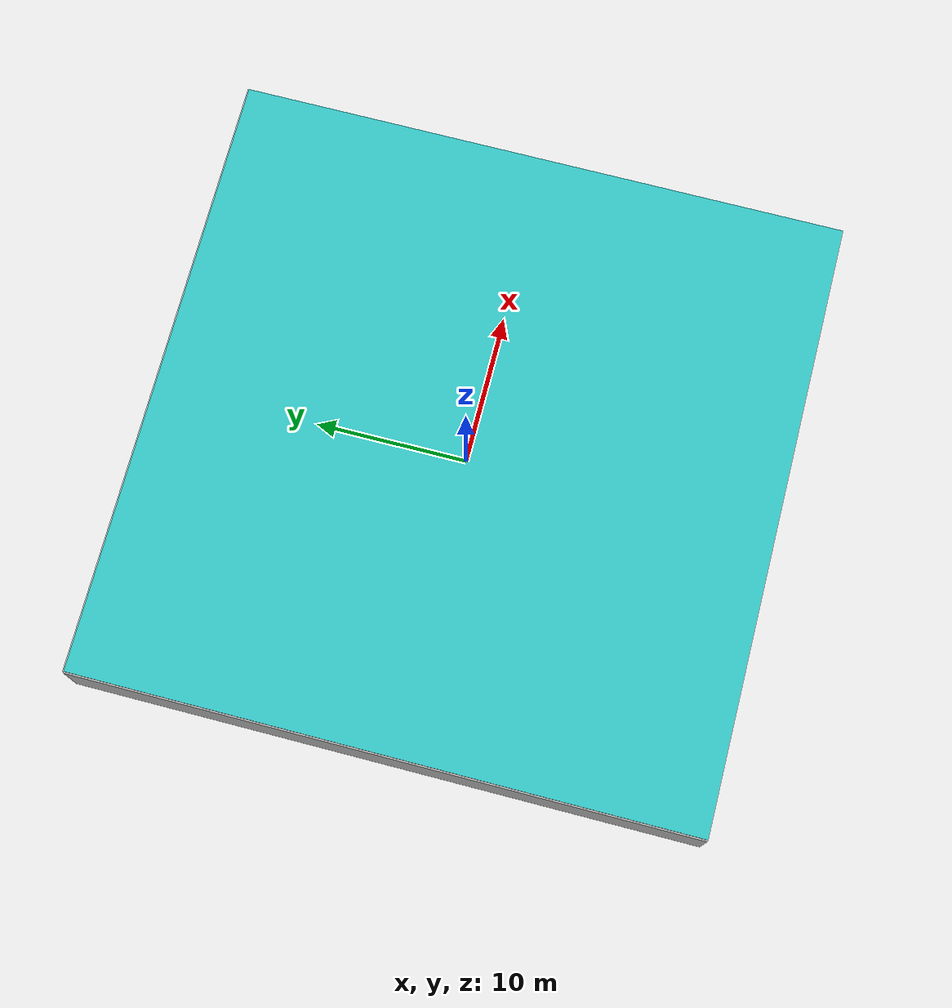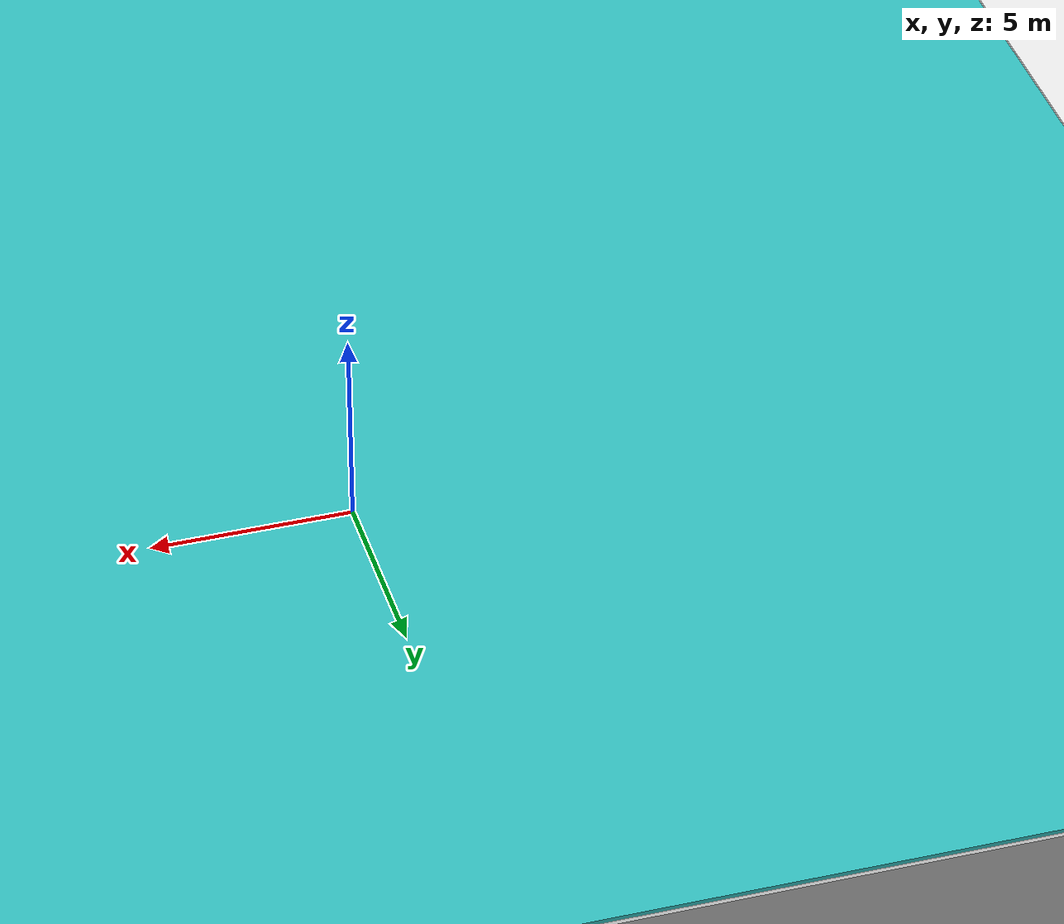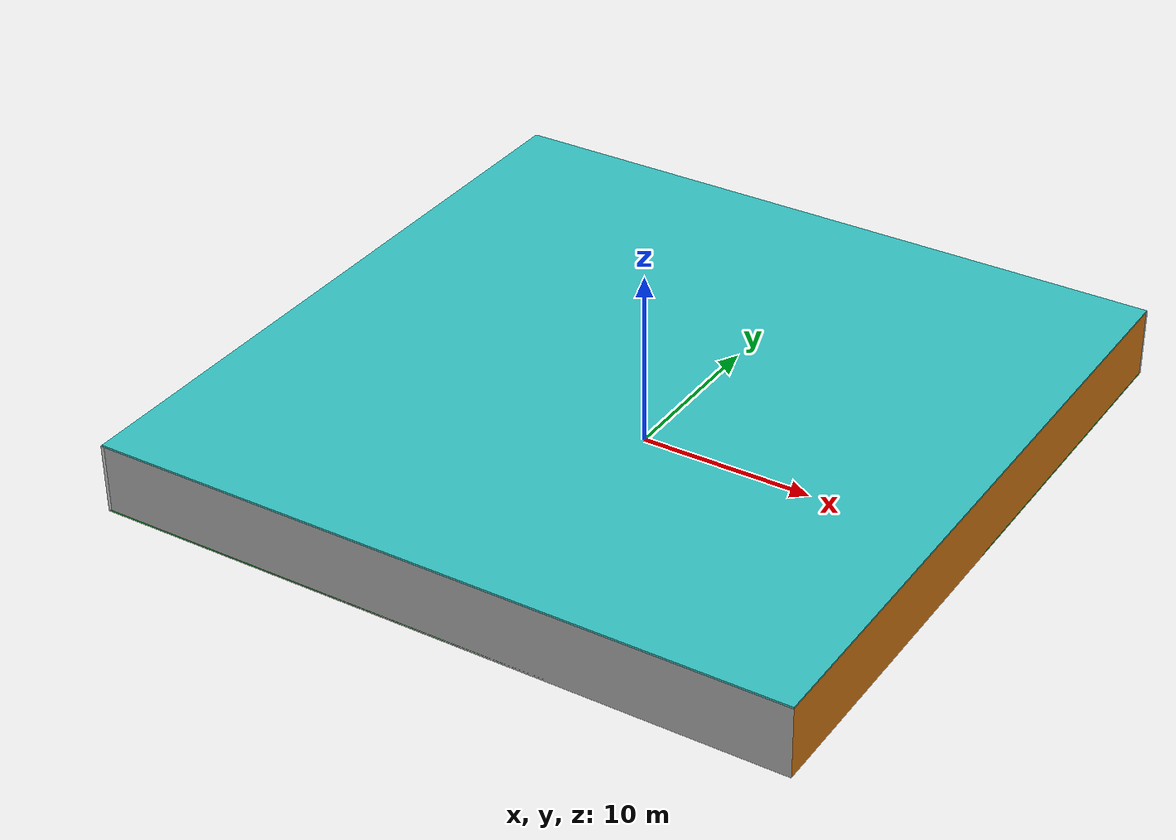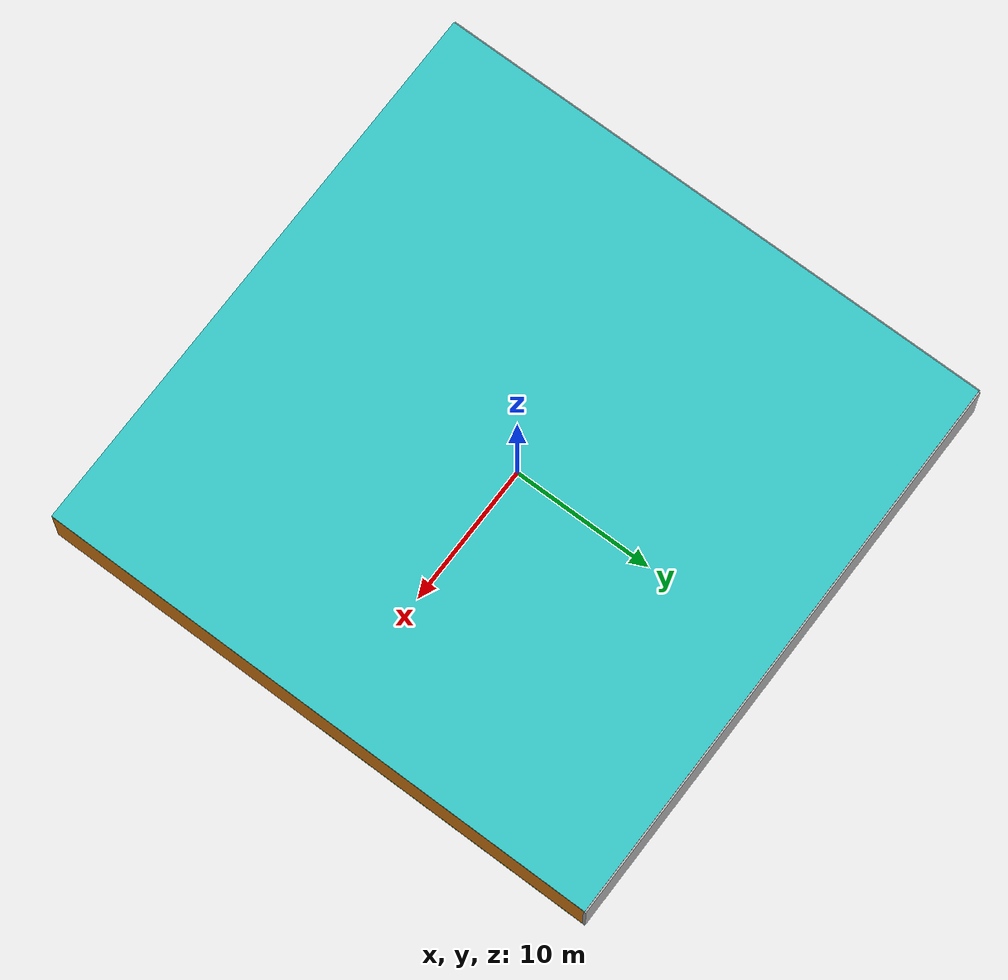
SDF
<sdf version="1.4">
 <world name="default">
  <physics type="ode">
   <max_step_size>0.001</max_step_size>
   <real_time_factor>1</real_time_factor>
   <real_time_update_rate>1000</real_time_update_rate>
   <gravity>0 0 -9.8</gravity>
  </physics>
  <scene><ambient>0.4 0.4 0.4 1</ambient><background>0.7 0.7 0.7 1</background><shadows>1</shadows></scene>
  <model name="Surrounding">
   <static>1</static>
   <link name="Ceiling">
    <collision name="Ceiling_Collision"><geometry><box><size>40 40 0.1</size></box></geometry></collision>
    <visual name="Ceiling_Visual">
     <geometry><box><size>40 40 0.1</size></box></geometry>
     <material>
      <script><uri>file://media/materials/scripts/gazebo.material</uri><name>Gazebo/Turquoise</name></script>
     </material>
    </visual>
    <pose>0 0 4.05 0 0 0</pose>
   </link>
   <link name="Wall_South">
    <collision name="Wall_South_Collision">
     <geometry><box><size>40 0 4</size></box></geometry>
     <pose>0 0 2 0 -0 0</pose>
    </collision>
    <visual name="Wall_South_Visual">
     <pose>0 0 2 0 -0 0</pose>
     <geometry><box><size>40 0 4</size></box></geometry>
     <material>
      <script><uri>file://media/materials/scripts/gazebo.material</uri><name>Gazebo/GreyGradientSky</name></script>
     </material>
    </visual>
    <velocity_decay><linear>0</linear><angular>0</angular></velocity_decay>
    <pose>0 -20 0 0 -0 0</pose>
   </link>
   <link name="Wall_East">
    <collision name="Wall_21_Collision">
     <geometry><box><size>40 0 4</size></box></geometry>
     <pose>0 0 2 0 -0 0</pose>
    </collision>
    <visual name="Wall_21_Visual">
     <pose>0 0 2 0 -0 0</pose>
     <geometry><box><size>40 0 4</size></box></geometry>
     <material>
      <script><uri>file://media/materials/scripts/gazebo.material</uri><name>Gazebo/Orange</name></script>
     </material>
    </visual>
    <velocity_decay><linear>0</linear><angular>0</angular></velocity_decay>
    <pose>20 0 0 0 -0 1.5708</pose>
   </link>
   <link name="Wall_North">
    <collision name="Wall_22_Collision">
     <geometry><box><size>40 0.2 4</size></box></geometry>
     <pose>0 0 2 0 -0 0</pose>
    </collision>
    <visual name="Wall_22_Visual">
     <pose>0 0 2 0 -0 0</pose>
     <geometry><box><size>40 0.2 4</size></box></geometry>
     <material>
      <script><uri>file://media/materials/scripts/gazebo.material</uri><name>Gazebo/LightOff</name></script>
     </material>
    </visual>
    <velocity_decay><linear>0</linear><angular>0</angular></velocity_decay>
    <pose>0 20 0 0 -0 0</pose>
   </link>
   <link name="Wall_West">
    <collision name="Wall_23_Collision">
     <geometry><box><size>40 0.2 4</size></box></geometry>
     <pose>0 0 2 0 -0 0</pose>
    </collision>
    <visual name="Wall_23_Visual">
     <pose>0 0 2 0 -0 0</pose>
     <geometry><box><size>40 0.2 4</size></box></geometry>
     <material>
      <script><uri>file://media/materials/scripts/gazebo.material</uri><name>Gazebo/JointAnchor</name></script>
     </material>
    </visual>
    <velocity_decay><linear>0</linear><angular>0</angular></velocity_decay>
    <pose>-20 0 0 0 0 -1.5708</pose>
   </link>
   <link name="Ground_link">
    <collision name="collision">
     <pose>0 0 .05 0 -0 0</pose>
     <geometry><box><size>40 40 0.1</size></box></geometry>
    </collision>
    <visual name="visual">
     <pose>0 0 .05 0 -0 0</pose>
     <geometry><box><size>40 40 0.1</size></box></geometry>
     <material>
      <script><uri>file://media/materials/scripts/gazebo.material</uri><name>Gazebo/GreenGlow</name></script>
     </material>
    </visual>
   </link>
   <static>1</static>
  </model>
  <spherical_coordinates>
   <surface_model>EARTH_WGS84</surface_model>
   <latitude_deg>0</latitude_deg>
   <longitude_deg>0</longitude_deg>
   <elevation>0</elevation>
   <heading_deg>0</heading_deg>
  </spherical_coordinates>
  <light name="lightball_0" type="diffuse">
   <diffuse>0.8 0.8 0.8 1</diffuse>
   <specular>0.2 0.2 0.2 1</specular>
   <attenuation>
    <range>100</range>
    <constant>0.7</constant>
    <linear>0.01</linear>
    <quadratic>0.001</quadratic>
   </attenuation>
   <direction>-0.5 0.1 -0.9</direction>
   <pose>-9.76595247017 -17.9430303979 0.75910684598 0 0 0</pose>
  </light>
  <light name="lightball_1" type="diffuse">
   <diffuse>0.8 0.8 0.8 1</diffuse>
   <specular>0.2 0.2 0.2 1</specular>
   <attenuation>
    <range>100</range>
    <constant>0.7</constant>
    <linear>0.01</linear>
    <quadratic>0.001</quadratic>
   </attenuation>
   <direction>-0.5 0.1 -0.9</direction>
   <pose>17.3321742059 -11.3096246313 3.14829417285 0 0 0</pose>
  </light>
  <light name="lightball_2" type="diffuse">
   <diffuse>0.8 0.8 0.8 1</diffuse>
   <specular>0.2 0.2 0.2 1</specular>
   <attenuation>
    <range>100</range>
    <constant>0.7</constant>
    <linear>0.01</linear>
    <quadratic>0.001</quadratic>
   </attenuation>
   <direction>-0.5 0.1 -0.9</direction>
   <pose>-18.0640309547 11.1752724272 3.79567192146 0 0 0</pose>
  </light>
  <light name="lightball_3" type="diffuse">
   <diffuse>0.8 0.8 0.8 1</diffuse>
   <specular>0.2 0.2 0.2 1</specular>
   <attenuation>
    <range>100</range>
    <constant>0.7</constant>
    <linear>0.01</linear>
    <quadratic>0.001</quadratic>
   </attenuation>
   <direction>-0.5 0.1 -0.9</direction>
   <pose>-9.42464554343 10.9179943537 0.639811948898 0 0 0</pose>
  </light>
  <light name="lightball_4" type="diffuse">
   <diffuse>0.8 0.8 0.8 1</diffuse>
   <specular>0.2 0.2 0.2 1</specular>
   <attenuation>
    <range>100</range>
    <constant>0.7</constant>
    <linear>0.01</linear>
    <quadratic>0.001</quadratic>
   </attenuation>
   <direction>-0.5 0.1 -0.9</direction>
   <pose>16.4486639537 -3.19900125228 0.621600961711 0 0 0</pose>
  </light>
  <light name="lightball_5" type="diffuse">
   <diffuse>0.8 0.8 0.8 1</diffuse>
   <specular>0.2 0.2 0.2 1</specular>
   <attenuation>
    <range>100</range>
    <constant>0.7</constant>
    <linear>0.01</linear>
    <quadratic>0.001</quadratic>
   </attenuation>
   <direction>-0.5 0.1 -0.9</direction>
   <pose>-16.4701356981 1.02949472748 2.34570162917 0 0 0</pose>
  </light>
  <light name="lightball_6" type="diffuse">
   <diffuse>0.8 0.8 0.8 1</diffuse>
   <specular>0.2 0.2 0.2 1</specular>
   <attenuation>
    <range>100</range>
    <constant>0.7</constant>
    <linear>0.01</linear>
    <quadratic>0.001</quadratic>
   </attenuation>
   <direction>-0.5 0.1 -0.9</direction>
   <pose>4.08816330467 1.83332970712 1.74699103242 0 0 0</pose>
  </light>
  <light name="lightball_7" type="diffuse">
   <diffuse>0.8 0.8 0.8 1</diffuse>
   <specular>0.2 0.2 0.2 1</specular>
   <attenuation>
    <range>100</range>
    <constant>0.7</constant>
    <linear>0.01</linear>
    <quadratic>0.001</quadratic>
   </attenuation>
   <direction>-0.5 0.1 -0.9</direction>
   <pose>10.2610398315 10.2330417697 1.23341735172 0 0 0</pose>
  </light>
  <light name="lightball_8" type="diffuse">
   <diffuse>0.8 0.8 0.8 1</diffuse>
   <specular>0.2 0.2 0.2 1</specular>
   <attenuation>
    <range>100</range>
    <constant>0.7</constant>
    <linear>0.01</linear>
    <quadratic>0.001</quadratic>
   </attenuation>
   <direction>-0.5 0.1 -0.9</direction>
   <pose>18.3532058605 -13.802719114 2.66974344075 0 0 0</pose>
  </light>
  <include><uri>model://table</uri><pose>-16.935231903 -8.0143805189 0 0 0 0.347271862757</pose></include>
  <include><uri>model://table</uri><pose>-18.6713278678 -2.22020087625 0 0 0 1.59907201449</pose></include>
  <include><uri>model://table</uri><pose>-15.6620355264 -10.3194503337 0 0 0 1.60711416503</pose></include>
  <include><uri>model://cabinet</uri><pose>-14.2470738069 6.35601423376 0 0 0 2.96868276015</pose></include>
  <include><uri>model://table</uri><pose>-12.6909683449 -13.9784713628 0 0 0 0.306497488355</pose></include>
  <include><uri>model://cabinet</uri><pose>-11.6192326645 -12.5990312236 0 0 0 2.78115383828</pose></include>
  <include><uri>model://cabinet</uri><pose>-12.143529855 0.83236016301 0 0 0 2.636607712</pose></include>
  <include><uri>model://table</uri><pose>-8.969378119 -6.65688936637 0 0 0 2.29597491023</pose></include>
  <include>
   <uri>model://robocup_3Dsim_goal</uri>
   <pose>-9.67867035535 -1.6539929471 0 0 0 2.04354024198</pose>
  </include>
  <include>
   <uri>model://robocup_3Dsim_goal</uri>
   <pose>-8.00794694879 0.17350071037 0 0 0 0.0702025385979</pose>
  </include>
  <include>
   <uri>model://textured_shapes</uri>
   <pose>-9.63049904854 8.46022078922 0 0 0 0.886604697415</pose>
  </include>
  <include>
   <uri>model://textured_shapes</uri>
   <pose>-5.54963040746 -14.0304533046 0 0 0 1.92519564954</pose>
  </include>
  <include>
   <uri>model://robocup_3Dsim_goal</uri>
   <pose>-4.75034734475 0.21311898862 0 0 0 2.67641661146</pose>
  </include>
  <include><uri>model://cabinet</uri><pose>-5.19745842732 17.5246689752 0 0 0 0.116177786834</pose></include>
  <include><uri>model://cabinet</uri><pose>-3.11767001416 -5.76560878696 0 0 0 0.541928357312</pose></include>
  <include>
   <uri>model://construction_cone</uri>
   <pose>-1.7001360443 -1.79837968027 0 0 0 1.6943512198</pose>
  </include>
  <include>
   <uri>model://robocup_3Dsim_goal</uri>
   <pose>-0.169981314133 -15.6274712788 0 0 0 1.4043492952</pose>
  </include>
  <include><uri>model://cabinet</uri><pose>1.44902133208 -6.66279574798 0 0 0 2.74736757237</pose></include>
  <include>
   <uri>model://robocup_3Dsim_goal</uri>
   <pose>0.962126698471 -2.67937489402 0 0 0 2.8254854252</pose>
  </include>
  <include>
   <uri>model://construction_cone</uri>
   <pose>-0.171771787534 2.30806821525 0 0 0 0.930796620878</pose>
  </include>
  <include>
   <uri>model://robocup_3Dsim_goal</uri>
   <pose>0.605506623982 6.99670363626 0 0 0 0.289493077702</pose>
  </include>
  <include>
   <uri>model://textured_shapes</uri>
   <pose>-0.431093301946 17.7517385589 0 0 0 0.449802231293</pose>
  </include>
  <include>
   <uri>model://construction_cone</uri>
   <pose>2.58633535768 -3.4997267841 0 0 0 2.19724026712</pose>
  </include>
  <include>
   <uri>model://construction_cone</uri>
   <pose>6.38501067727 1.15981383574 0 0 0 2.65698275883</pose>
  </include>
  <include><uri>model://cabinet</uri><pose>10.318194844 -8.25197064109 0 0 0 0.134277436837</pose></include>
  <include>
   <uri>model://textured_shapes</uri>
   <pose>8.59483756328 5.65162494552 0 0 0 0.223077950666</pose>
  </include>
  <include><uri>model://cabinet</uri><pose>8.70389118027 14.4999783911 0 0 0 3.09698284484</pose></include>
  <include>
   <uri>model://textured_shapes</uri>
   <pose>9.17079579627 18.0787689475 0 0 0 2.34001416555</pose>
  </include>
  <include><uri>model://cabinet</uri><pose>12.408327974 -10.866594442 0 0 0 2.35457332765</pose></include>
  <include>
   <uri>model://construction_cone</uri>
   <pose>12.7331588887 -7.34313346363 0 0 0 1.0976249821</pose>
  </include>
  <include>
   <uri>model://construction_cone</uri>
   <pose>15.6394484435 -15.0634789326 0 0 0 2.12225366821</pose>
  </include>
  <include>
   <uri>model://robocup_3Dsim_goal</uri>
   <pose>15.9635197781 0.0799309810431 0 0 0 1.67287241993</pose>
  </include>
  <include>
   <uri>model://textured_shapes</uri>
   <pose>15.8598865976 5.84659302788 0 0 0 2.60731259789</pose>
  </include>
  <include><uri>model://cabinet</uri><pose>15.3771328367 14.7815348298 0 0 0 2.96614836575</pose></include>
  <include>
   <uri>model://textured_shapes</uri>
   <pose>15.2932070042 17.9418454248 0 0 0 0.481919679463</pose>
  </include>
 </world>
</sdf>

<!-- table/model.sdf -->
<sdf version="1.5">
  <model name="table">
    <static>true</static>
    <link name="link">
      <collision name="surface">
        <pose>0 0 1.0 0 0 0</pose>
        <geometry>
          <box>
            <size>1.5 0.8 0.03</size>
          </box>
        </geometry>
        <surface>
          <friction>
            <ode>
              <mu>0.6</mu>
              <mu2>0.6</mu2>
            </ode>
          </friction>
        </surface>
      </collision>
      <visual name="visual1">
        <pose>0 0 1.0 0 0 0</pose>
        <geometry>
          <box>
            <size>1.5 0.8 0.03</size>
          </box>
        </geometry>
        <material>
          <script>
            <uri>model://media/materials/scripts/gazebo.material</uri>
            <name>Gazebo/Wood</name>
          </script>
        </material>
      </visual>
      <collision name="front_left_leg">
        <pose>0.68 0.38 0.5 0 0 0</pose>
        <geometry>
          <cylinder>
            <radius>0.02</radius>
            <length>1.0</length>
          </cylinder>
        </geometry>
      </collision>
      <visual name="front_left_leg">
        <pose>0.68 0.38 0.5 0 0 0</pose>
        <geometry>
          <cylinder>
            <radius>0.02</radius>
            <length>1.0</length>
          </cylinder>
        </geometry>
        <material>
          <script>
            <uri>model://media/materials/scripts/gazebo.material</uri>
            <name>Gazebo/Grey</name>
          </script>
        </material>
      </visual>
      <collision name="front_right_leg">
        <pose>0.68 -0.38 0.5 0 0 0</pose>
        <geometry>
          <cylinder>
            <radius>0.02</radius>
            <length>1.0</length>
          </cylinder>
        </geometry>
      </collision>
      <visual name="front_right_leg">
        <pose>0.68 -0.38 0.5 0 0 0</pose>
        <geometry>
          <cylinder>
            <radius>0.02</radius>
            <length>1.0</length>
          </cylinder>
        </geometry>
        <material>
          <script>
            <uri>model://media/materials/scripts/gazebo.material</uri>
            <name>Gazebo/Grey</name>
          </script>
        </material>
      </visual>
      <collision name="back_right_leg">
        <pose>-0.68 -0.38 0.5 0 0 0</pose>
        <geometry>
          <cylinder>
            <radius>0.02</radius>
            <length>1.0</length>
          </cylinder>
        </geometry>
      </collision>
      <visual name="back_right_leg">
        <pose>-0.68 -0.38 0.5 0 0 0</pose>
        <geometry>
          <cylinder>
            <radius>0.02</radius>
            <length>1.0</length>
          </cylinder>
        </geometry>
        <material>
          <script>
            <uri>model://media/materials/scripts/gazebo.material</uri>
            <name>Gazebo/Grey</name>
          </script>
        </material>
      </visual>
      <collision name="back_left_leg">
        <pose>-0.68 0.38 0.5 0 0 0</pose>
        <geometry>
          <cylinder>
            <radius>0.02</radius>
            <length>1.0</length>
          </cylinder>
        </geometry>
      </collision>
      <visual name="back_left_leg">
        <pose>-0.68 0.38 0.5 0 0 0</pose>
        <geometry>
          <cylinder>
            <radius>0.02</radius>
            <length>1.0</length>
          </cylinder>
        </geometry>
        <material>
          <script>
            <uri>model://media/materials/scripts/gazebo.material</uri>
            <name>Gazebo/Grey</name>
          </script>
        </material>
      </visual>
    </link>
  </model>
</sdf>

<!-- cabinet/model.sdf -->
<sdf version="1.5">
  <model name="cabinet">
    <static>true</static>
    <link name="cabinet_bottom_plate">
      <inertial>
        <pose>0 0 -1 0 0 0</pose>
        <inertia>
          <ixx>2.050000</ixx>
          <ixy>0</ixy>
          <ixz>0</ixz>
          <iyy>2.050000</iyy>
          <iyz>0</iyz>
          <izz>2.050000</izz>
        </inertia>
        <mass>25.000000</mass>
      </inertial>
      <collision name="cabinet_bottom_plate_geom">
        <pose>0 0 0.010000 0 0 0</pose>
        <geometry>
          <box>
            <size>0.450000 0.450000 0.020000</size>
          </box>
        </geometry>
      </collision>
      <visual name="cabinet_bottom_plate_geom_visual">
        <pose>0 0 0.010000 0 0 0</pose>
        <geometry>
          <box>
            <size>0.450000 0.450000 0.020000</size>
          </box>
        </geometry>
        <material>
          <script>
            <uri>model://media/materials/scripts/gazebo.material</uri>
            <name>Gazebo/Wood</name>
          </script>
        </material>
      </visual>
      <collision name="cabinet_bottom_plate_geom_cabinet_back_plate">
        <pose>0.235000 0 0.510000 0 0 0</pose>
        <geometry>
          <box>
            <size>0.020000 0.450000 1.020000</size>
          </box>
        </geometry>
      </collision>
      <visual name="cabinet_bottom_plate_geom_cabinet_back_plate_visual">
        <pose>0.235000 0 0.510000 0 0 0</pose>
        <geometry>
          <box>
            <size>0.020000 0.450000 1.020000</size>
          </box>
        </geometry>
        <material>
          <script>
            <uri>model://media/materials/scripts/gazebo.material</uri>
            <name>Gazebo/Wood</name>
          </script>
        </material>
      </visual>
      <collision name="cabinet_bottom_plate_geom_cabinet_left_plate">
        <pose>0 0.235000 0.510000 0 0 0</pose>
        <geometry>
          <box>
            <size>0.450000 0.020000 1.020000</size>
          </box>
        </geometry>
      </collision>
      <visual name="cabinet_bottom_plate_geom_cabinet_left_plate_visual">
        <pose>0 0.235000 0.510000 0 0 0</pose>
        <geometry>
          <box>
            <size>0.450000 0.020000 1.020000</size>
          </box>
        </geometry>
        <material>
          <script>
            <uri>model://media/materials/scripts/gazebo.material</uri>
            <name>Gazebo/Wood</name>
          </script>
        </material>
      </visual>
      <collision name="cabinet_bottom_plate_geom_cabinet_middle_plate">
        <pose>0 0 0.510000 0 0 0</pose>
        <geometry>
          <box>
            <size>0.450000 0.450000 0.020000</size>
          </box>
        </geometry>
      </collision>
      <visual name="cabinet_bottom_plate_geom_cabinet_middle_plate_visual">
        <pose>0 0 0.510000 0 0 0</pose>
        <geometry>
          <box>
            <size>0.450000 0.450000 0.020000</size>
          </box>
        </geometry>
        <material>
          <script>
            <uri>model://media/materials/scripts/gazebo.material</uri>
            <name>Gazebo/Wood</name>
          </script>
        </material>
      </visual>
      <collision name="cabinet_bottom_plate_geom_cabinet_right_plate">
        <pose>0 -0.235000 0.510000 0 0 0</pose>
        <geometry>
          <box>
            <size>0.450000 0.020000 1.020000</size>
          </box>
        </geometry>
      </collision>
      <visual name="cabinet_bottom_plate_geom_cabinet_right_plate_visual">
        <pose>0 -0.235000 0.510000 0 0 0</pose>
        <geometry>
          <box>
            <size>0.450000 0.020000 1.020000</size>
          </box>
        </geometry>
        <material>
          <script>
            <uri>model://media/materials/scripts/gazebo.material</uri>
            <name>Gazebo/Wood</name>
          </script>
        </material>
      </visual>
      <collision name="cabinet_bottom_plate_geom_cabinet_top_plate">
        <pose>0 0 1.010000 0 0 0</pose>
        <geometry>
          <box>
            <size>0.450000 0.450000 0.020000</size>
          </box>
        </geometry>
      </collision>
      <visual name="cabinet_bottom_plate_geom_cabinet_top_plate_visual">
        <pose>0 0 1.010000 0 0 0</pose>
        <geometry>
          <box>
            <size>0.450000 0.450000 0.020000</size>
          </box>
        </geometry>
        <material>
          <script>
            <uri>model://media/materials/scripts/gazebo.material</uri>
            <name>Gazebo/Wood</name>
          </script>
        </material>
      </visual>
    </link>
  </model>
</sdf>

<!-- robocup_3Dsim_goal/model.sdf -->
<sdf version="1.5">
  <model name="robocup_3d_goal">
    <static>true</static>
    <link name="left_post">
      <pose>0 1.05 0.45 0 0 0</pose>
      <collision name="collision">
        <geometry>
          <cylinder>
            <radius>0.05</radius>
            <length>0.9</length>
          </cylinder>
        </geometry>
      </collision>
      <visual name="visual">
        <geometry>
          <cylinder>
            <radius>0.05</radius>
            <length>0.9</length>
          </cylinder>
        </geometry>
        <material>
          <script>
            <uri>file://media/materials/scripts/gazebo.material</uri>
            <name>Gazebo/ZincYellow</name>
          </script>
        </material>
      </visual>
    </link>
    <link name="left_support_horiz_lower">
      <pose>0.30 1.05 0.01 0 0 0</pose>
      <collision name="collision">
        <geometry>
          <box>
            <size>0.50 0.02 0.02</size>
          </box>
        </geometry>
      </collision>
      <visual name="visual">
        <geometry>
          <box>
            <size>0.50 0.02 0.02</size>
          </box>
        </geometry>
        <material>
          <script>
            <uri>file://media/materials/scripts/gazebo.material</uri>
            <name>Gazebo/White</name>
          </script>
        </material>
      </visual>
    </link>
    <link name="left_support_horiz_upper">
      <pose>0.30 1.05 0.79 0 0 0</pose>
      <collision name="collision">
        <geometry>
          <box>
            <size>0.50 0.02 0.02</size>
          </box>
        </geometry>
      </collision>
      <visual name="visual">
        <geometry>
          <box>
            <size>0.50 0.02 0.02</size>
          </box>
        </geometry>
        <material>
          <script>
            <uri>file://media/materials/scripts/gazebo.material</uri>
            <name>Gazebo/White</name>
          </script>
        </material>
      </visual>
    </link>
    <link name="left_support_vertical">
      <pose>0.56 1.05 0.4 0 1.5708 0</pose>
      <collision name="collision">
        <geometry>
          <box>
            <size>0.80 0.02 0.02</size>
          </box>
        </geometry>
      </collision>
      <visual name="visual">
        <geometry>
          <box>
            <size>0.80 0.02 0.02</size>
          </box>
        </geometry>
        <material>
          <script>
            <uri>file://media/materials/scripts/gazebo.material</uri>
            <name>Gazebo/White</name>
          </script>
        </material>
      </visual>
    </link>
    <link name="right_support_horiz_lower">
      <pose>0.30 -1.05 0.01 0 0 0</pose>
      <collision name="collision">
        <geometry>
          <box>
            <size>0.50 0.02 0.02</size>
          </box>
        </geometry>
      </collision>
      <visual name="visual">
        <geometry>
          <box>
            <size>0.50 0.02 0.02</size>
          </box>
        </geometry>
        <material>
          <script>
            <uri>file://media/materials/scripts/gazebo.material</uri>
            <name>Gazebo/White</name>
          </script>
        </material>
      </visual>
    </link>
    <link name="right_support_horiz_upper">
      <pose>0.30 -1.05 0.79 0 0 0</pose>
      <collision name="collision">
        <geometry>
          <box>
            <size>0.50 0.02 0.02</size>
          </box>
        </geometry>
      </collision>
      <visual name="visual">
        <geometry>
          <box>
            <size>0.50 0.02 0.02</size>
          </box>
        </geometry>
        <material>
          <script>
            <uri>file://media/materials/scripts/gazebo.material</uri>
            <name>Gazebo/White</name>
          </script>
        </material>
      </visual>
    </link>
    <link name="right_support_vertical">
      <pose>0.56 -1.05 0.4 0 1.5708 0</pose>
      <collision name="collision">
        <geometry>
          <box>
            <size>0.80 0.02 0.02</size>
          </box>
        </geometry>
      </collision>
      <visual name="visual">
        <geometry>
          <box>
            <size>0.80 0.02 0.02</size>
          </box>
        </geometry>
        <material>
          <script>
            <uri>file://media/materials/scripts/gazebo.material</uri>
            <name>Gazebo/White</name>
          </script>
        </material>
      </visual>
    </link>
    <link name="center_support_horiz_lower">
      <pose>0.56 0 0.01 0 1.5708 0</pose>
      <collision name="collision">
        <geometry>
          <box>
            <size>0.02 2.08 0.02</size>
          </box>
        </geometry>
      </collision>
      <visual name="visual">
        <geometry>
          <box>
            <size>0.02 2.08 0.02</size>
          </box>
        </geometry>
        <material>
          <script>
            <uri>file://media/materials/scripts/gazebo.material</uri>
            <name>Gazebo/White</name>
          </script>
        </material>
      </visual>
    </link>
    <link name="center_support_horiz_upper">
      <pose>0.56 0 0.79 0 1.5708 0</pose>
      <collision name="collision">
        <geometry>
          <box>
            <size>0.02 2.08 0.02</size>
          </box>
        </geometry>
      </collision>
      <visual name="visual">
        <geometry>
          <box>
            <size>0.02 2.08 0.02</size>
          </box>
        </geometry>
        <material>
          <script>
            <uri>file://media/materials/scripts/gazebo.material</uri>
            <name>Gazebo/White</name>
          </script>
        </material>
      </visual>
    </link>
    <link name="right_post">
      <pose>0 -1.05 0.45 0 0 0</pose>
      <collision name="collision">
        <geometry>
          <cylinder>
            <radius>0.05</radius>
            <length>0.9</length>
          </cylinder>
        </geometry>
      </collision>
      <visual name="visual">
        <geometry>
          <cylinder>
            <radius>0.05</radius>
            <length>0.9</length>
          </cylinder>
        </geometry>
        <material>
          <script>
            <uri>file://media/materials/scripts/gazebo.material</uri>
            <name>Gazebo/ZincYellow</name>
          </script>
        </material>
      </visual>
    </link>
    <link name="crossbar">
      <pose>0 0 0.85 1.57 1.57 0</pose>
      <collision name="collision">
        <geometry>
          <cylinder>
            <radius>0.05</radius>
            <length>2.0</length>
          </cylinder>
        </geometry>
      </collision>
      <visual name="visual">
        <geometry>
          <cylinder>
            <radius>0.05</radius>
            <length>2.0</length>
          </cylinder>
        </geometry>
        <material>
          <script>
            <uri>file://media/materials/scripts/gazebo.material</uri>
            <name>Gazebo/ZincYellow</name>
          </script>
        </material>
      </visual>
    </link>
    <link name="center_net">
      <pose>0.56 0 0.40 0 0 0</pose>
      <collision name="collision">
        <geometry>
          <box>
            <size>0.01 2.1 0.80</size>
          </box>
        </geometry>
      </collision>
      <visual name="visual">
        <geometry>
          <box>
            <size>0.01 2.1 0.80</size>
          </box>
        </geometry>
        <material>
          <script>
            <uri>model://../model_source/models/robocup09_spl_field/materials/scripts/</uri>
            <uri>model://../model_source/models/robocup09_spl_field/materials/textures/</uri>
            <name>RoboCup/Net</name>
          </script>
        </material>
      </visual>
    </link>
    <link name="left_net">
      <pose>0.30 1.05 0.40 0 0 0</pose>
      <collision name="collision">
        <geometry>
          <box>
            <size>0.50 0.01 0.76</size>
          </box>
        </geometry>
      </collision>
      <visual name="visual">
        <geometry>
          <box>
            <size>0.50 0.01 0.76</size>
          </box>
        </geometry>
        <material>
          <script>
            <uri>model://../model_source/models/robocup09_spl_field/materials/scripts/</uri>
            <uri>model://../model_source/models/robocup09_spl_field/materials/textures/</uri>
            <name>RoboCup/Net</name>
          </script>
        </material>
      </visual>
    </link>
    <link name="right_net">
      <pose>0.30 -1.05 0.40 0 0 0</pose>
      <collision name="collision">
        <geometry>
          <box>
            <size>0.50 0.01 0.76</size>
          </box>
        </geometry>
      </collision>
      <visual name="visual">
        <geometry>
          <box>
            <size>0.50 0.01 0.76</size>
          </box>
        </geometry>
        <material>
          <script>
            <uri>model://../model_source/models/robocup09_spl_field/materials/scripts/</uri>
            <uri>model://../model_source/models/robocup09_spl_field/materials/textures/</uri>
            <name>RoboCup/Net</name>
          </script>
        </material>
      </visual>
    </link>
  </model>
</sdf>

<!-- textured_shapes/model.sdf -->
<sdf version="1.6">
  <model name="textured_shapes">
    <pose>0 0 0.5 0 0 0</pose>
    <link name="box">
      <pose>0 -1.5 0 0 0 0</pose>
      <collision name="collision">
        <geometry>
          <box>
            <size>1 1 1</size>
          </box>
        </geometry>
      </collision>
      <visual name="visual">
        <geometry>
          <box>
            <size>1 1 1</size>
          </box>
        </geometry>
        <material>
          <script>
            <uri>model://../model_source/models/textured_shapes/materials/scripts</uri>
            <uri>model://../model_source/models/textured_shapes/materials/textures</uri>
            <name>TexturedShape/Squares</name>
          </script>
        </material>
      </visual>
    </link>
    <link name="sphere">
      <collision name="collision">
        <geometry>
          <sphere>
            <radius>0.5</radius>
          </sphere>
        </geometry>
      </collision>
      <visual name="visual">
        <geometry>
          <sphere>
            <radius>0.5</radius>
          </sphere>
        </geometry>
        <material>
          <script>
            <uri>model://../model_source/models/textured_shapes/materials/scripts</uri>
            <uri>model://../model_source/models/textured_shapes/materials/textures</uri>
            <name>TexturedShape/Squares</name>
          </script>
        </material>
      </visual>
    </link>
    <link name="cylinder">
      <pose>0 1.5 0 0 0 0</pose>
      <collision name="collision">
        <geometry>
          <cylinder>
            <radius>0.5</radius>
            <length>1</length>
          </cylinder>
        </geometry>
      </collision>
      <visual name="visual">
        <geometry>
          <cylinder>
            <radius>0.5</radius>
            <length>1</length>
          </cylinder>
        </geometry>
        <material>
          <script>
            <uri>model://../model_source/models/textured_shapes/materials/scripts</uri>
            <uri>model://../model_source/models/textured_shapes/materials/textures</uri>
            <name>TexturedShape/Squares</name>
          </script>
        </material>
      </visual>
    </link>
  </model>
</sdf>

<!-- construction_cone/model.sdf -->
<sdf version="1.5">
  <model name="Construction Cone">
    <link name="link">
      <collision name="collision">
        <geometry>
          <mesh>
            <scale>10 10 10</scale>
            <uri>file://isr-testbed/construction_cone/meshes/construction_cone.dae</uri>
          </mesh>
        </geometry>
      </collision>
      <visual name="visual">
        <geometry>
          <mesh>
            <scale>10 10 10</scale>
            <uri>file://isr-testbed/construction_cone/meshes/construction_cone.dae</uri>
          </mesh>
        </geometry>
      </visual>
    </link>
  </model>
</sdf>
